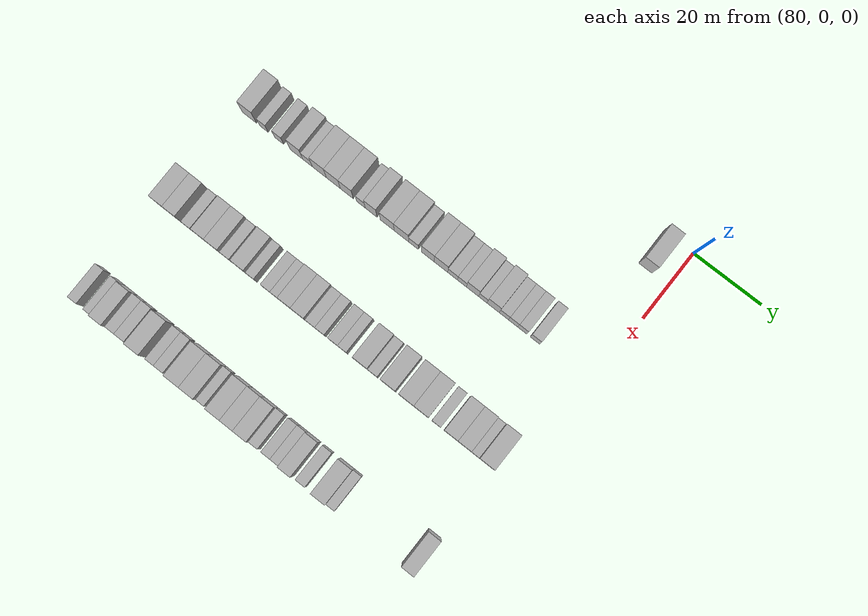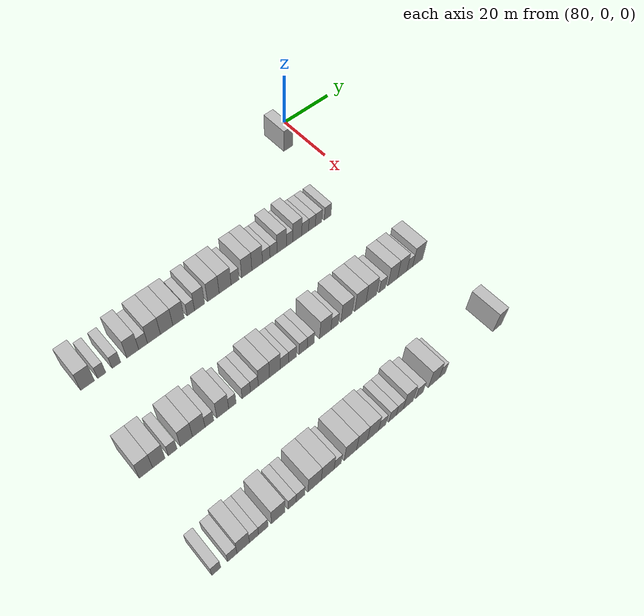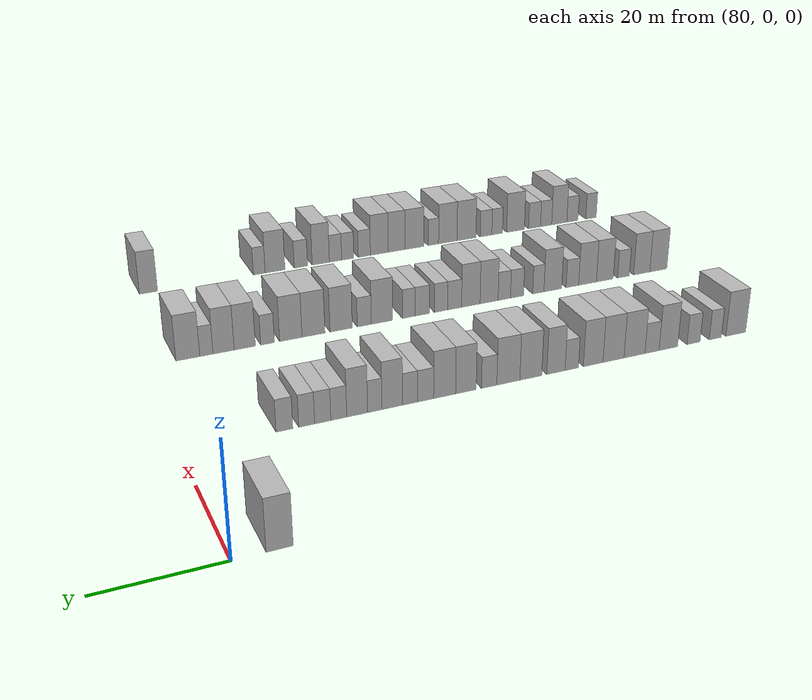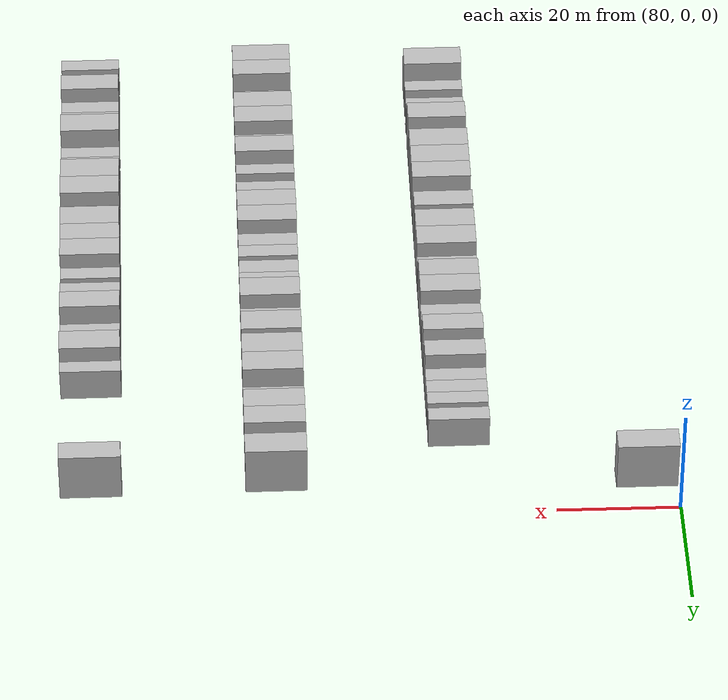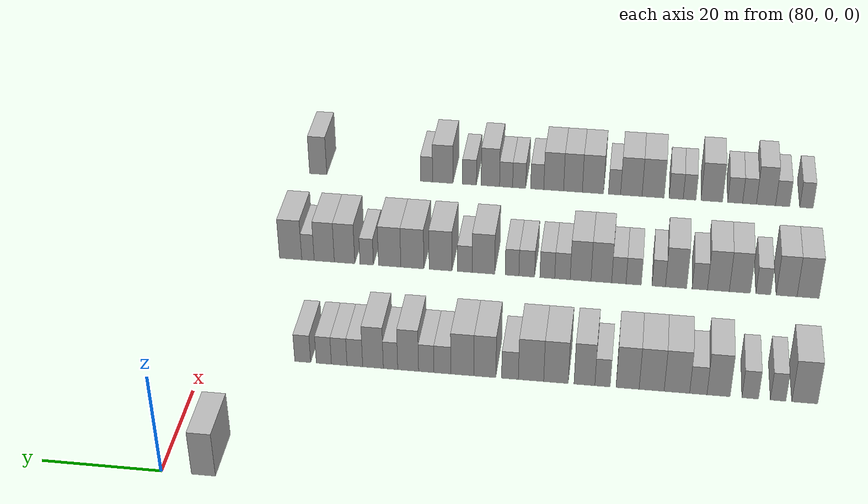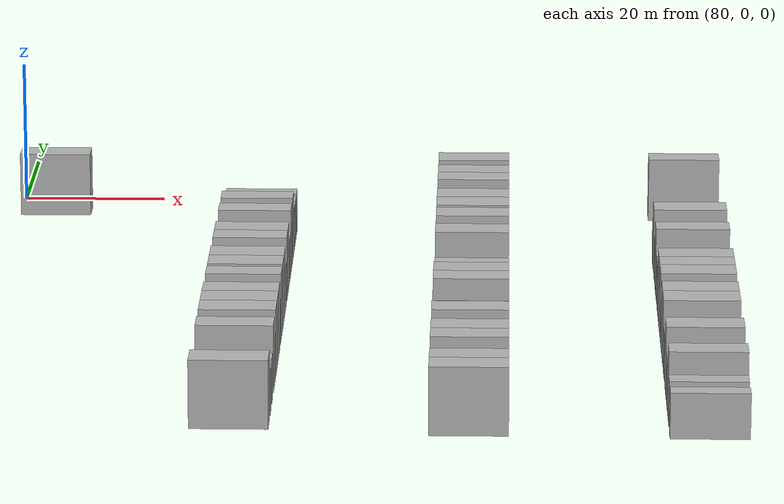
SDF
<sdf version="1.6">
 <world name="default">
  <model name="building_548">
   <static>1</static>
   <pose>85.0000 -6.9594 0 0.000000 0.000000 0.000000</pose>
   <link name="link">
    <pose>0 0 4.50 0 0 0</pose>
    <collision name="collision"><geometry><box><size>10.0000 3.9607 9.0000</size></box></geometry></collision>
    <visual name="visual">
     <cast_shadows>0</cast_shadows>
     <geometry><box><size>10.0000 3.9607 9.0000</size></box></geometry>
     <material>
      <script>
       <uri>model://HANNAS_wall/materials/scripts</uri>
       <uri>model://HANNAS_wall/materials/textures</uri>
       <name>vrc/HANNAS_wall</name>
      </script>
     </material>
    </visual>
   </link>
  </model>
  <model name="building_743">
   <static>1</static>
   <pose>115.0000 -104.1729 0 0.000000 0.000000 0.000000</pose>
   <link name="link">
    <pose>0 0 4.50 0 0 0</pose>
    <collision name="collision"><geometry><box><size>10.0000 4.3531 9.0000</size></box></geometry></collision>
    <visual name="visual">
     <cast_shadows>0</cast_shadows>
     <geometry><box><size>10.0000 4.3531 9.0000</size></box></geometry>
     <material>
      <script>
       <uri>model://HANNAS_wall/materials/scripts</uri>
       <uri>model://HANNAS_wall/materials/textures</uri>
       <name>vrc/HANNAS_wall</name>
      </script>
     </material>
    </visual>
   </link>
  </model>
  <model name="building_744">
   <static>1</static>
   <pose>115.0000 -99.6867 0 0.000000 0.000000 0.000000</pose>
   <link name="link">
    <pose>0 0 3.00 0 0 0</pose>
    <collision name="collision"><geometry><box><size>10.0000 2.6191 6.0000</size></box></geometry></collision>
    <visual name="visual">
     <cast_shadows>0</cast_shadows>
     <geometry><box><size>10.0000 2.6191 6.0000</size></box></geometry>
     <material>
      <script>
       <uri>model://HANNAS_wall/materials/scripts</uri>
       <uri>model://HANNAS_wall/materials/textures</uri>
       <name>vrc/HANNAS_wall</name>
      </script>
     </material>
    </visual>
   </link>
  </model>
  <model name="building_745">
   <static>1</static>
   <pose>115.0000 -94.9735 0 0.000000 0.000000 0.000000</pose>
   <link name="link">
    <pose>0 0 3.00 0 0 0</pose>
    <collision name="collision"><geometry><box><size>10.0000 2.8073 6.0000</size></box></geometry></collision>
    <visual name="visual">
     <cast_shadows>0</cast_shadows>
     <geometry><box><size>10.0000 2.8073 6.0000</size></box></geometry>
     <material>
      <script>
       <uri>model://HANNAS_wall/materials/scripts</uri>
       <uri>model://HANNAS_wall/materials/textures</uri>
       <name>vrc/HANNAS_wall</name>
      </script>
     </material>
    </visual>
   </link>
  </model>
  <model name="building_746">
   <static>1</static>
   <pose>115.0000 -89.6016 0 0.000000 0.000000 0.000000</pose>
   <link name="link">
    <pose>0 0 4.50 0 0 0</pose>
    <collision name="collision"><geometry><box><size>10.0000 3.9365 9.0000</size></box></geometry></collision>
    <visual name="visual">
     <cast_shadows>0</cast_shadows>
     <geometry><box><size>10.0000 3.9365 9.0000</size></box></geometry>
     <material>
      <script>
       <uri>model://HANNAS_wall/materials/scripts</uri>
       <uri>model://HANNAS_wall/materials/textures</uri>
       <name>vrc/HANNAS_wall</name>
      </script>
     </material>
    </visual>
   </link>
  </model>
  <model name="building_747">
   <static>1</static>
   <pose>115.0000 -86.1579 0 0.000000 0.000000 0.000000</pose>
   <link name="link">
    <pose>0 0 3.00 0 0 0</pose>
    <collision name="collision"><geometry><box><size>10.0000 2.9509 6.0000</size></box></geometry></collision>
    <visual name="visual">
     <cast_shadows>0</cast_shadows>
     <geometry><box><size>10.0000 2.9509 6.0000</size></box></geometry>
     <material>
      <script>
       <uri>model://HANNAS_wall/materials/scripts</uri>
       <uri>model://HANNAS_wall/materials/textures</uri>
       <name>vrc/HANNAS_wall</name>
      </script>
     </material>
    </visual>
   </link>
  </model>
  <model name="building_748">
   <static>1</static>
   <pose>115.0000 -82.5025 0 0.000000 0.000000 0.000000</pose>
   <link name="link">
    <pose>0 0 4.50 0 0 0</pose>
    <collision name="collision"><geometry><box><size>10.0000 4.3599 9.0000</size></box></geometry></collision>
    <visual name="visual">
     <cast_shadows>0</cast_shadows>
     <geometry><box><size>10.0000 4.3599 9.0000</size></box></geometry>
     <material>
      <script>
       <uri>model://HANNAS_wall/materials/scripts</uri>
       <uri>model://HANNAS_wall/materials/textures</uri>
       <name>vrc/HANNAS_wall</name>
      </script>
     </material>
    </visual>
   </link>
  </model>
  <model name="building_749">
   <static>1</static>
   <pose>115.0000 -78.1792 0 0.000000 0.000000 0.000000</pose>
   <link name="link">
    <pose>0 0 4.50 0 0 0</pose>
    <collision name="collision"><geometry><box><size>10.0000 4.2868 9.0000</size></box></geometry></collision>
    <visual name="visual">
     <cast_shadows>0</cast_shadows>
     <geometry><box><size>10.0000 4.2868 9.0000</size></box></geometry>
     <material>
      <script>
       <uri>model://HANNAS_wall/materials/scripts</uri>
       <uri>model://HANNAS_wall/materials/textures</uri>
       <name>vrc/HANNAS_wall</name>
      </script>
     </material>
    </visual>
   </link>
  </model>
  <model name="building_750">
   <static>1</static>
   <pose>115.0000 -74.0528 0 0.000000 0.000000 0.000000</pose>
   <link name="link">
    <pose>0 0 4.50 0 0 0</pose>
    <collision name="collision"><geometry><box><size>10.0000 3.9661 9.0000</size></box></geometry></collision>
    <visual name="visual">
     <cast_shadows>0</cast_shadows>
     <geometry><box><size>10.0000 3.9661 9.0000</size></box></geometry>
     <material>
      <script>
       <uri>model://HANNAS_wall/materials/scripts</uri>
       <uri>model://HANNAS_wall/materials/textures</uri>
       <name>vrc/HANNAS_wall</name>
      </script>
     </material>
    </visual>
   </link>
  </model>
  <model name="building_751">
   <static>1</static>
   <pose>115.0000 -69.7425 0 0.000000 0.000000 0.000000</pose>
   <link name="link">
    <pose>0 0 3.00 0 0 0</pose>
    <collision name="collision"><geometry><box><size>10.0000 2.6544 6.0000</size></box></geometry></collision>
    <visual name="visual">
     <cast_shadows>0</cast_shadows>
     <geometry><box><size>10.0000 2.6544 6.0000</size></box></geometry>
     <material>
      <script>
       <uri>model://HANNAS_wall/materials/scripts</uri>
       <uri>model://HANNAS_wall/materials/textures</uri>
       <name>vrc/HANNAS_wall</name>
      </script>
     </material>
    </visual>
   </link>
  </model>
  <model name="building_752">
   <static>1</static>
   <pose>115.0000 -66.6131 0 0.000000 0.000000 0.000000</pose>
   <link name="link">
    <pose>0 0 4.50 0 0 0</pose>
    <collision name="collision"><geometry><box><size>10.0000 3.6045 9.0000</size></box></geometry></collision>
    <visual name="visual">
     <cast_shadows>0</cast_shadows>
     <geometry><box><size>10.0000 3.6045 9.0000</size></box></geometry>
     <material>
      <script>
       <uri>model://HANNAS_wall/materials/scripts</uri>
       <uri>model://HANNAS_wall/materials/textures</uri>
       <name>vrc/HANNAS_wall</name>
      </script>
     </material>
    </visual>
   </link>
  </model>
  <model name="building_753">
   <static>1</static>
   <pose>115.0000 -61.6814 0 0.000000 0.000000 0.000000</pose>
   <link name="link">
    <pose>0 0 4.50 0 0 0</pose>
    <collision name="collision"><geometry><box><size>10.0000 4.2590 9.0000</size></box></geometry></collision>
    <visual name="visual">
     <cast_shadows>0</cast_shadows>
     <geometry><box><size>10.0000 4.2590 9.0000</size></box></geometry>
     <material>
      <script>
       <uri>model://HANNAS_wall/materials/scripts</uri>
       <uri>model://HANNAS_wall/materials/textures</uri>
       <name>vrc/HANNAS_wall</name>
      </script>
     </material>
    </visual>
   </link>
  </model>
  <model name="building_754">
   <static>1</static>
   <pose>115.0000 -57.3458 0 0.000000 0.000000 0.000000</pose>
   <link name="link">
    <pose>0 0 4.50 0 0 0</pose>
    <collision name="collision"><geometry><box><size>10.0000 4.4121 9.0000</size></box></geometry></collision>
    <visual name="visual">
     <cast_shadows>0</cast_shadows>
     <geometry><box><size>10.0000 4.4121 9.0000</size></box></geometry>
     <material>
      <script>
       <uri>model://HANNAS_wall/materials/scripts</uri>
       <uri>model://HANNAS_wall/materials/textures</uri>
       <name>vrc/HANNAS_wall</name>
      </script>
     </material>
    </visual>
   </link>
  </model>
  <model name="building_755">
   <static>1</static>
   <pose>115.0000 -53.6777 0 0.000000 0.000000 0.000000</pose>
   <link name="link">
    <pose>0 0 3.00 0 0 0</pose>
    <collision name="collision"><geometry><box><size>10.0000 2.9241 6.0000</size></box></geometry></collision>
    <visual name="visual">
     <cast_shadows>0</cast_shadows>
     <geometry><box><size>10.0000 2.9241 6.0000</size></box></geometry>
     <material>
      <script>
       <uri>model://HANNAS_wall/materials/scripts</uri>
       <uri>model://HANNAS_wall/materials/textures</uri>
       <name>vrc/HANNAS_wall</name>
      </script>
     </material>
    </visual>
   </link>
  </model>
  <model name="building_756">
   <static>1</static>
   <pose>115.0000 -49.2927 0 0.000000 0.000000 0.000000</pose>
   <link name="link">
    <pose>0 0 4.50 0 0 0</pose>
    <collision name="collision"><geometry><box><size>10.0000 3.8459 9.0000</size></box></geometry></collision>
    <visual name="visual">
     <cast_shadows>0</cast_shadows>
     <geometry><box><size>10.0000 3.8459 9.0000</size></box></geometry>
     <material>
      <script>
       <uri>model://HANNAS_wall/materials/scripts</uri>
       <uri>model://HANNAS_wall/materials/textures</uri>
       <name>vrc/HANNAS_wall</name>
      </script>
     </material>
    </visual>
   </link>
  </model>
  <model name="building_757">
   <static>1</static>
   <pose>115.0000 -45.3350 0 0.000000 0.000000 0.000000</pose>
   <link name="link">
    <pose>0 0 4.50 0 0 0</pose>
    <collision name="collision"><geometry><box><size>10.0000 4.0694 9.0000</size></box></geometry></collision>
    <visual name="visual">
     <cast_shadows>0</cast_shadows>
     <geometry><box><size>10.0000 4.0694 9.0000</size></box></geometry>
     <material>
      <script>
       <uri>model://HANNAS_wall/materials/scripts</uri>
       <uri>model://HANNAS_wall/materials/textures</uri>
       <name>vrc/HANNAS_wall</name>
      </script>
     </material>
    </visual>
   </link>
  </model>
  <model name="building_758">
   <static>1</static>
   <pose>115.0000 -41.8275 0 0.000000 0.000000 0.000000</pose>
   <link name="link">
    <pose>0 0 3.00 0 0 0</pose>
    <collision name="collision"><geometry><box><size>10.0000 2.9456 6.0000</size></box></geometry></collision>
    <visual name="visual">
     <cast_shadows>0</cast_shadows>
     <geometry><box><size>10.0000 2.9456 6.0000</size></box></geometry>
     <material>
      <script>
       <uri>model://HANNAS_wall/materials/scripts</uri>
       <uri>model://HANNAS_wall/materials/textures</uri>
       <name>vrc/HANNAS_wall</name>
      </script>
     </material>
    </visual>
   </link>
  </model>
  <model name="building_759">
   <static>1</static>
   <pose>115.0000 -38.9989 0 0.000000 0.000000 0.000000</pose>
   <link name="link">
    <pose>0 0 3.00 0 0 0</pose>
    <collision name="collision"><geometry><box><size>10.0000 2.7116 6.0000</size></box></geometry></collision>
    <visual name="visual">
     <cast_shadows>0</cast_shadows>
     <geometry><box><size>10.0000 2.7116 6.0000</size></box></geometry>
     <material>
      <script>
       <uri>model://HANNAS_wall/materials/scripts</uri>
       <uri>model://HANNAS_wall/materials/textures</uri>
       <name>vrc/HANNAS_wall</name>
      </script>
     </material>
    </visual>
   </link>
  </model>
  <model name="building_760">
   <static>1</static>
   <pose>115.0000 -35.8002 0 0.000000 0.000000 0.000000</pose>
   <link name="link">
    <pose>0 0 4.50 0 0 0</pose>
    <collision name="collision"><geometry><box><size>10.0000 3.6859 9.0000</size></box></geometry></collision>
    <visual name="visual">
     <cast_shadows>0</cast_shadows>
     <geometry><box><size>10.0000 3.6859 9.0000</size></box></geometry>
     <material>
      <script>
       <uri>model://HANNAS_wall/materials/scripts</uri>
       <uri>model://HANNAS_wall/materials/textures</uri>
       <name>vrc/HANNAS_wall</name>
      </script>
     </material>
    </visual>
   </link>
  </model>
  <model name="building_761">
   <static>1</static>
   <pose>115.0000 -32.6843 0 0.000000 0.000000 0.000000</pose>
   <link name="link">
    <pose>0 0 3.00 0 0 0</pose>
    <collision name="collision"><geometry><box><size>10.0000 2.5460 6.0000</size></box></geometry></collision>
    <visual name="visual">
     <cast_shadows>0</cast_shadows>
     <geometry><box><size>10.0000 2.5460 6.0000</size></box></geometry>
     <material>
      <script>
       <uri>model://HANNAS_wall/materials/scripts</uri>
       <uri>model://HANNAS_wall/materials/textures</uri>
       <name>vrc/HANNAS_wall</name>
      </script>
     </material>
    </visual>
   </link>
  </model>
  <model name="building_762">
   <static>1</static>
   <pose>115.0000 -29.5763 0 0.000000 0.000000 0.000000</pose>
   <link name="link">
    <pose>0 0 4.50 0 0 0</pose>
    <collision name="collision"><geometry><box><size>10.0000 3.6699 9.0000</size></box></geometry></collision>
    <visual name="visual">
     <cast_shadows>0</cast_shadows>
     <geometry><box><size>10.0000 3.6699 9.0000</size></box></geometry>
     <material>
      <script>
       <uri>model://HANNAS_wall/materials/scripts</uri>
       <uri>model://HANNAS_wall/materials/textures</uri>
       <name>vrc/HANNAS_wall</name>
      </script>
     </material>
    </visual>
   </link>
  </model>
  <model name="building_763">
   <static>1</static>
   <pose>115.0000 -26.3494 0 0.000000 0.000000 0.000000</pose>
   <link name="link">
    <pose>0 0 3.00 0 0 0</pose>
    <collision name="collision"><geometry><box><size>10.0000 2.7841 6.0000</size></box></geometry></collision>
    <visual name="visual">
     <cast_shadows>0</cast_shadows>
     <geometry><box><size>10.0000 2.7841 6.0000</size></box></geometry>
     <material>
      <script>
       <uri>model://HANNAS_wall/materials/scripts</uri>
       <uri>model://HANNAS_wall/materials/textures</uri>
       <name>vrc/HANNAS_wall</name>
      </script>
     </material>
    </visual>
   </link>
  </model>
  <model name="building_764">
   <static>1</static>
   <pose>115.0000 -23.5656 0 0.000000 0.000000 0.000000</pose>
   <link name="link">
    <pose>0 0 3.00 0 0 0</pose>
    <collision name="collision"><geometry><box><size>10.0000 2.7834 6.0000</size></box></geometry></collision>
    <visual name="visual">
     <cast_shadows>0</cast_shadows>
     <geometry><box><size>10.0000 2.7834 6.0000</size></box></geometry>
     <material>
      <script>
       <uri>model://HANNAS_wall/materials/scripts</uri>
       <uri>model://HANNAS_wall/materials/textures</uri>
       <name>vrc/HANNAS_wall</name>
      </script>
     </material>
    </visual>
   </link>
  </model>
  <model name="building_765">
   <static>1</static>
   <pose>115.0000 -20.8191 0 0.000000 0.000000 0.000000</pose>
   <link name="link">
    <pose>0 0 3.00 0 0 0</pose>
    <collision name="collision"><geometry><box><size>10.0000 2.7096 6.0000</size></box></geometry></collision>
    <visual name="visual">
     <cast_shadows>0</cast_shadows>
     <geometry><box><size>10.0000 2.7096 6.0000</size></box></geometry>
     <material>
      <script>
       <uri>model://HANNAS_wall/materials/scripts</uri>
       <uri>model://HANNAS_wall/materials/textures</uri>
       <name>vrc/HANNAS_wall</name>
      </script>
     </material>
    </visual>
   </link>
  </model>
  <model name="building_766">
   <static>1</static>
   <pose>115.0000 -17.0431 0 0.000000 0.000000 0.000000</pose>
   <link name="link">
    <pose>0 0 3.00 0 0 0</pose>
    <collision name="collision"><geometry><box><size>10.0000 2.8424 6.0000</size></box></geometry></collision>
    <visual name="visual">
     <cast_shadows>0</cast_shadows>
     <geometry><box><size>10.0000 2.8424 6.0000</size></box></geometry>
     <material>
      <script>
       <uri>model://HANNAS_wall/materials/scripts</uri>
       <uri>model://HANNAS_wall/materials/textures</uri>
       <name>vrc/HANNAS_wall</name>
      </script>
     </material>
    </visual>
   </link>
  </model>
  <model name="building_962">
   <static>1</static>
   <pose>145.0000 -106.2715 0 0.000000 0.000000 0.000000</pose>
   <link name="link">
    <pose>0 0 4.50 0 0 0</pose>
    <collision name="collision"><geometry><box><size>10.0000 4.0461 9.0000</size></box></geometry></collision>
    <visual name="visual">
     <cast_shadows>0</cast_shadows>
     <geometry><box><size>10.0000 4.0461 9.0000</size></box></geometry>
     <material>
      <script>
       <uri>model://HANNAS_wall/materials/scripts</uri>
       <uri>model://HANNAS_wall/materials/textures</uri>
       <name>vrc/HANNAS_wall</name>
      </script>
     </material>
    </visual>
   </link>
  </model>
  <model name="building_963">
   <static>1</static>
   <pose>145.0000 -102.3324 0 0.000000 0.000000 0.000000</pose>
   <link name="link">
    <pose>0 0 4.50 0 0 0</pose>
    <collision name="collision"><geometry><box><size>10.0000 3.8322 9.0000</size></box></geometry></collision>
    <visual name="visual">
     <cast_shadows>0</cast_shadows>
     <geometry><box><size>10.0000 3.8322 9.0000</size></box></geometry>
     <material>
      <script>
       <uri>model://HANNAS_wall/materials/scripts</uri>
       <uri>model://HANNAS_wall/materials/textures</uri>
       <name>vrc/HANNAS_wall</name>
      </script>
     </material>
    </visual>
   </link>
  </model>
  <model name="building_964">
   <static>1</static>
   <pose>145.0000 -98.0470 0 0.000000 0.000000 0.000000</pose>
   <link name="link">
    <pose>0 0 3.00 0 0 0</pose>
    <collision name="collision"><geometry><box><size>10.0000 2.7386 6.0000</size></box></geometry></collision>
    <visual name="visual">
     <cast_shadows>0</cast_shadows>
     <geometry><box><size>10.0000 2.7386 6.0000</size></box></geometry>
     <material>
      <script>
       <uri>model://HANNAS_wall/materials/scripts</uri>
       <uri>model://HANNAS_wall/materials/textures</uri>
       <name>vrc/HANNAS_wall</name>
      </script>
     </material>
    </visual>
   </link>
  </model>
  <model name="building_965">
   <static>1</static>
   <pose>145.0000 -93.7318 0 0.000000 0.000000 0.000000</pose>
   <link name="link">
    <pose>0 0 4.50 0 0 0</pose>
    <collision name="collision"><geometry><box><size>10.0000 3.8918 9.0000</size></box></geometry></collision>
    <visual name="visual">
     <cast_shadows>0</cast_shadows>
     <geometry><box><size>10.0000 3.8918 9.0000</size></box></geometry>
     <material>
      <script>
       <uri>model://HANNAS_wall/materials/scripts</uri>
       <uri>model://HANNAS_wall/materials/textures</uri>
       <name>vrc/HANNAS_wall</name>
      </script>
     </material>
    </visual>
   </link>
  </model>
  <model name="building_966">
   <static>1</static>
   <pose>145.0000 -89.7628 0 0.000000 0.000000 0.000000</pose>
   <link name="link">
    <pose>0 0 4.50 0 0 0</pose>
    <collision name="collision"><geometry><box><size>10.0000 4.0461 9.0000</size></box></geometry></collision>
    <visual name="visual">
     <cast_shadows>0</cast_shadows>
     <geometry><box><size>10.0000 4.0461 9.0000</size></box></geometry>
     <material>
      <script>
       <uri>model://HANNAS_wall/materials/scripts</uri>
       <uri>model://HANNAS_wall/materials/textures</uri>
       <name>vrc/HANNAS_wall</name>
      </script>
     </material>
    </visual>
   </link>
  </model>
  <model name="building_967">
   <static>1</static>
   <pose>145.0000 -86.3174 0 0.000000 0.000000 0.000000</pose>
   <link name="link">
    <pose>0 0 3.00 0 0 0</pose>
    <collision name="collision"><geometry><box><size>10.0000 2.8447 6.0000</size></box></geometry></collision>
    <visual name="visual">
     <cast_shadows>0</cast_shadows>
     <geometry><box><size>10.0000 2.8447 6.0000</size></box></geometry>
     <material>
      <script>
       <uri>model://HANNAS_wall/materials/scripts</uri>
       <uri>model://HANNAS_wall/materials/textures</uri>
       <name>vrc/HANNAS_wall</name>
      </script>
     </material>
    </visual>
   </link>
  </model>
  <model name="building_968">
   <static>1</static>
   <pose>145.0000 -81.9142 0 0.000000 0.000000 0.000000</pose>
   <link name="link">
    <pose>0 0 4.50 0 0 0</pose>
    <collision name="collision"><geometry><box><size>10.0000 3.9617 9.0000</size></box></geometry></collision>
    <visual name="visual">
     <cast_shadows>0</cast_shadows>
     <geometry><box><size>10.0000 3.9617 9.0000</size></box></geometry>
     <material>
      <script>
       <uri>model://HANNAS_wall/materials/scripts</uri>
       <uri>model://HANNAS_wall/materials/textures</uri>
       <name>vrc/HANNAS_wall</name>
      </script>
     </material>
    </visual>
   </link>
  </model>
  <model name="building_969">
   <static>1</static>
   <pose>145.0000 -78.6820 0 0.000000 0.000000 0.000000</pose>
   <link name="link">
    <pose>0 0 3.00 0 0 0</pose>
    <collision name="collision"><geometry><box><size>10.0000 2.5027 6.0000</size></box></geometry></collision>
    <visual name="visual">
     <cast_shadows>0</cast_shadows>
     <geometry><box><size>10.0000 2.5027 6.0000</size></box></geometry>
     <material>
      <script>
       <uri>model://HANNAS_wall/materials/scripts</uri>
       <uri>model://HANNAS_wall/materials/textures</uri>
       <name>vrc/HANNAS_wall</name>
      </script>
     </material>
    </visual>
   </link>
  </model>
  <model name="building_970">
   <static>1</static>
   <pose>145.0000 -73.9994 0 0.000000 0.000000 0.000000</pose>
   <link name="link">
    <pose>0 0 3.00 0 0 0</pose>
    <collision name="collision"><geometry><box><size>10.0000 2.8625 6.0000</size></box></geometry></collision>
    <visual name="visual">
     <cast_shadows>0</cast_shadows>
     <geometry><box><size>10.0000 2.8625 6.0000</size></box></geometry>
     <material>
      <script>
       <uri>model://HANNAS_wall/materials/scripts</uri>
       <uri>model://HANNAS_wall/materials/textures</uri>
       <name>vrc/HANNAS_wall</name>
      </script>
     </material>
    </visual>
   </link>
  </model>
  <model name="building_971">
   <static>1</static>
   <pose>145.0000 -71.2258 0 0.000000 0.000000 0.000000</pose>
   <link name="link">
    <pose>0 0 3.00 0 0 0</pose>
    <collision name="collision"><geometry><box><size>10.0000 2.6847 6.0000</size></box></geometry></collision>
    <visual name="visual">
     <cast_shadows>0</cast_shadows>
     <geometry><box><size>10.0000 2.6847 6.0000</size></box></geometry>
     <material>
      <script>
       <uri>model://HANNAS_wall/materials/scripts</uri>
       <uri>model://HANNAS_wall/materials/textures</uri>
       <name>vrc/HANNAS_wall</name>
      </script>
     </material>
    </visual>
   </link>
  </model>
  <model name="building_972">
   <static>1</static>
   <pose>145.0000 -67.9424 0 0.000000 0.000000 0.000000</pose>
   <link name="link">
    <pose>0 0 4.50 0 0 0</pose>
    <collision name="collision"><geometry><box><size>10.0000 3.8821 9.0000</size></box></geometry></collision>
    <visual name="visual">
     <cast_shadows>0</cast_shadows>
     <geometry><box><size>10.0000 3.8821 9.0000</size></box></geometry>
     <material>
      <script>
       <uri>model://HANNAS_wall/materials/scripts</uri>
       <uri>model://HANNAS_wall/materials/textures</uri>
       <name>vrc/HANNAS_wall</name>
      </script>
     </material>
    </visual>
   </link>
  </model>
  <model name="building_973">
   <static>1</static>
   <pose>145.0000 -64.0420 0 0.000000 0.000000 0.000000</pose>
   <link name="link">
    <pose>0 0 4.50 0 0 0</pose>
    <collision name="collision"><geometry><box><size>10.0000 3.9185 9.0000</size></box></geometry></collision>
    <visual name="visual">
     <cast_shadows>0</cast_shadows>
     <geometry><box><size>10.0000 3.9185 9.0000</size></box></geometry>
     <material>
      <script>
       <uri>model://HANNAS_wall/materials/scripts</uri>
       <uri>model://HANNAS_wall/materials/textures</uri>
       <name>vrc/HANNAS_wall</name>
      </script>
     </material>
    </visual>
   </link>
  </model>
  <model name="building_974">
   <static>1</static>
   <pose>145.0000 -60.6245 0 0.000000 0.000000 0.000000</pose>
   <link name="link">
    <pose>0 0 3.00 0 0 0</pose>
    <collision name="collision"><geometry><box><size>10.0000 2.9165 6.0000</size></box></geometry></collision>
    <visual name="visual">
     <cast_shadows>0</cast_shadows>
     <geometry><box><size>10.0000 2.9165 6.0000</size></box></geometry>
     <material>
      <script>
       <uri>model://HANNAS_wall/materials/scripts</uri>
       <uri>model://HANNAS_wall/materials/textures</uri>
       <name>vrc/HANNAS_wall</name>
      </script>
     </material>
    </visual>
   </link>
  </model>
  <model name="building_975">
   <static>1</static>
   <pose>145.0000 -57.7631 0 0.000000 0.000000 0.000000</pose>
   <link name="link">
    <pose>0 0 3.00 0 0 0</pose>
    <collision name="collision"><geometry><box><size>10.0000 2.8063 6.0000</size></box></geometry></collision>
    <visual name="visual">
     <cast_shadows>0</cast_shadows>
     <geometry><box><size>10.0000 2.8063 6.0000</size></box></geometry>
     <material>
      <script>
       <uri>model://HANNAS_wall/materials/scripts</uri>
       <uri>model://HANNAS_wall/materials/textures</uri>
       <name>vrc/HANNAS_wall</name>
      </script>
     </material>
    </visual>
   </link>
  </model>
  <model name="building_976">
   <static>1</static>
   <pose>145.0000 -53.8699 0 0.000000 0.000000 0.000000</pose>
   <link name="link">
    <pose>0 0 3.00 0 0 0</pose>
    <collision name="collision"><geometry><box><size>10.0000 2.9802 6.0000</size></box></geometry></collision>
    <visual name="visual">
     <cast_shadows>0</cast_shadows>
     <geometry><box><size>10.0000 2.9802 6.0000</size></box></geometry>
     <material>
      <script>
       <uri>model://HANNAS_wall/materials/scripts</uri>
       <uri>model://HANNAS_wall/materials/textures</uri>
       <name>vrc/HANNAS_wall</name>
      </script>
     </material>
    </visual>
   </link>
  </model>
  <model name="building_977">
   <static>1</static>
   <pose>145.0000 -51.0795 0 0.000000 0.000000 0.000000</pose>
   <link name="link">
    <pose>0 0 3.00 0 0 0</pose>
    <collision name="collision"><geometry><box><size>10.0000 2.6007 6.0000</size></box></geometry></collision>
    <visual name="visual">
     <cast_shadows>0</cast_shadows>
     <geometry><box><size>10.0000 2.6007 6.0000</size></box></geometry>
     <material>
      <script>
       <uri>model://HANNAS_wall/materials/scripts</uri>
       <uri>model://HANNAS_wall/materials/textures</uri>
       <name>vrc/HANNAS_wall</name>
      </script>
     </material>
    </visual>
   </link>
  </model>
  <model name="building_978">
   <static>1</static>
   <pose>145.0000 -45.6263 0 0.000000 0.000000 0.000000</pose>
   <link name="link">
    <pose>0 0 4.50 0 0 0</pose>
    <collision name="collision"><geometry><box><size>10.0000 4.3057 9.0000</size></box></geometry></collision>
    <visual name="visual">
     <cast_shadows>0</cast_shadows>
     <geometry><box><size>10.0000 4.3057 9.0000</size></box></geometry>
     <material>
      <script>
       <uri>model://HANNAS_wall/materials/scripts</uri>
       <uri>model://HANNAS_wall/materials/textures</uri>
       <name>vrc/HANNAS_wall</name>
      </script>
     </material>
    </visual>
   </link>
  </model>
  <model name="building_979">
   <static>1</static>
   <pose>145.0000 -42.0626 0 0.000000 0.000000 0.000000</pose>
   <link name="link">
    <pose>0 0 3.00 0 0 0</pose>
    <collision name="collision"><geometry><box><size>10.0000 2.8216 6.0000</size></box></geometry></collision>
    <visual name="visual">
     <cast_shadows>0</cast_shadows>
     <geometry><box><size>10.0000 2.8216 6.0000</size></box></geometry>
     <material>
      <script>
       <uri>model://HANNAS_wall/materials/scripts</uri>
       <uri>model://HANNAS_wall/materials/textures</uri>
       <name>vrc/HANNAS_wall</name>
      </script>
     </material>
    </visual>
   </link>
  </model>
  <model name="building_980">
   <static>1</static>
   <pose>145.0000 -37.4567 0 0.000000 0.000000 0.000000</pose>
   <link name="link">
    <pose>0 0 4.50 0 0 0</pose>
    <collision name="collision"><geometry><box><size>10.0000 4.3904 9.0000</size></box></geometry></collision>
    <visual name="visual">
     <cast_shadows>0</cast_shadows>
     <geometry><box><size>10.0000 4.3904 9.0000</size></box></geometry>
     <material>
      <script>
       <uri>model://HANNAS_wall/materials/scripts</uri>
       <uri>model://HANNAS_wall/materials/textures</uri>
       <name>vrc/HANNAS_wall</name>
      </script>
     </material>
    </visual>
   </link>
  </model>
  <model name="building_981">
   <static>1</static>
   <pose>145.0000 -32.0406 0 0.000000 0.000000 0.000000</pose>
   <link name="link">
    <pose>0 0 4.50 0 0 0</pose>
    <collision name="collision"><geometry><box><size>10.0000 4.4417 9.0000</size></box></geometry></collision>
    <visual name="visual">
     <cast_shadows>0</cast_shadows>
     <geometry><box><size>10.0000 4.4417 9.0000</size></box></geometry>
     <material>
      <script>
       <uri>model://HANNAS_wall/materials/scripts</uri>
       <uri>model://HANNAS_wall/materials/textures</uri>
       <name>vrc/HANNAS_wall</name>
      </script>
     </material>
    </visual>
   </link>
  </model>
  <model name="building_982">
   <static>1</static>
   <pose>145.0000 -27.6714 0 0.000000 0.000000 0.000000</pose>
   <link name="link">
    <pose>0 0 4.50 0 0 0</pose>
    <collision name="collision"><geometry><box><size>10.0000 4.2967 9.0000</size></box></geometry></collision>
    <visual name="visual">
     <cast_shadows>0</cast_shadows>
     <geometry><box><size>10.0000 4.2967 9.0000</size></box></geometry>
     <material>
      <script>
       <uri>model://HANNAS_wall/materials/scripts</uri>
       <uri>model://HANNAS_wall/materials/textures</uri>
       <name>vrc/HANNAS_wall</name>
      </script>
     </material>
    </visual>
   </link>
  </model>
  <model name="building_983">
   <static>1</static>
   <pose>145.0000 -23.2257 0 0.000000 0.000000 0.000000</pose>
   <link name="link">
    <pose>0 0 3.00 0 0 0</pose>
    <collision name="collision"><geometry><box><size>10.0000 2.5948 6.0000</size></box></geometry></collision>
    <visual name="visual">
     <cast_shadows>0</cast_shadows>
     <geometry><box><size>10.0000 2.5948 6.0000</size></box></geometry>
     <material>
      <script>
       <uri>model://HANNAS_wall/materials/scripts</uri>
       <uri>model://HANNAS_wall/materials/textures</uri>
       <name>vrc/HANNAS_wall</name>
      </script>
     </material>
    </visual>
   </link>
  </model>
  <model name="building_984">
   <static>1</static>
   <pose>145.0000 -18.9455 0 0.000000 0.000000 0.000000</pose>
   <link name="link">
    <pose>0 0 4.50 0 0 0</pose>
    <collision name="collision"><geometry><box><size>10.0000 3.9655 9.0000</size></box></geometry></collision>
    <visual name="visual">
     <cast_shadows>0</cast_shadows>
     <geometry><box><size>10.0000 3.9655 9.0000</size></box></geometry>
     <material>
      <script>
       <uri>model://HANNAS_wall/materials/scripts</uri>
       <uri>model://HANNAS_wall/materials/textures</uri>
       <name>vrc/HANNAS_wall</name>
      </script>
     </material>
    </visual>
   </link>
  </model>
  <model name="building_985">
   <static>1</static>
   <pose>145.0000 -15.0002 0 0.000000 0.000000 0.000000</pose>
   <link name="link">
    <pose>0 0 4.50 0 0 0</pose>
    <collision name="collision"><geometry><box><size>10.0000 3.9250 9.0000</size></box></geometry></collision>
    <visual name="visual">
     <cast_shadows>0</cast_shadows>
     <geometry><box><size>10.0000 3.9250 9.0000</size></box></geometry>
     <material>
      <script>
       <uri>model://HANNAS_wall/materials/scripts</uri>
       <uri>model://HANNAS_wall/materials/textures</uri>
       <name>vrc/HANNAS_wall</name>
      </script>
     </material>
    </visual>
   </link>
  </model>
  <model name="building_986">
   <static>1</static>
   <pose>145.0000 -11.8286 0 0.000000 0.000000 0.000000</pose>
   <link name="link">
    <pose>0 0 3.00 0 0 0</pose>
    <collision name="collision"><geometry><box><size>10.0000 2.4182 6.0000</size></box></geometry></collision>
    <visual name="visual">
     <cast_shadows>0</cast_shadows>
     <geometry><box><size>10.0000 2.4182 6.0000</size></box></geometry>
     <material>
      <script>
       <uri>model://HANNAS_wall/materials/scripts</uri>
       <uri>model://HANNAS_wall/materials/textures</uri>
       <name>vrc/HANNAS_wall</name>
      </script>
     </material>
    </visual>
   </link>
  </model>
  <model name="building_987">
   <static>1</static>
   <pose>145.0000 -8.4532 0 0.000000 0.000000 0.000000</pose>
   <link name="link">
    <pose>0 0 4.50 0 0 0</pose>
    <collision name="collision"><geometry><box><size>10.0000 4.3327 9.0000</size></box></geometry></collision>
    <visual name="visual">
     <cast_shadows>0</cast_shadows>
     <geometry><box><size>10.0000 4.3327 9.0000</size></box></geometry>
     <material>
      <script>
       <uri>model://HANNAS_wall/materials/scripts</uri>
       <uri>model://HANNAS_wall/materials/textures</uri>
       <name>vrc/HANNAS_wall</name>
      </script>
     </material>
    </visual>
   </link>
  </model>
  <model name="building_1192">
   <static>1</static>
   <pose>175.0000 -107.4912 0 0.000000 0.000000 0.000000</pose>
   <link name="link">
    <pose>0 0 3.00 0 0 0</pose>
    <collision name="collision"><geometry><box><size>10.0000 2.6476 6.0000</size></box></geometry></collision>
    <visual name="visual">
     <cast_shadows>0</cast_shadows>
     <geometry><box><size>10.0000 2.6476 6.0000</size></box></geometry>
     <material>
      <script>
       <uri>model://HANNAS_wall/materials/scripts</uri>
       <uri>model://HANNAS_wall/materials/textures</uri>
       <name>vrc/HANNAS_wall</name>
      </script>
     </material>
    </visual>
   </link>
  </model>
  <model name="building_1193">
   <static>1</static>
   <pose>175.0000 -102.7568 0 0.000000 0.000000 0.000000</pose>
   <link name="link">
    <pose>0 0 3.00 0 0 0</pose>
    <collision name="collision"><geometry><box><size>10.0000 2.8211 6.0000</size></box></geometry></collision>
    <visual name="visual">
     <cast_shadows>0</cast_shadows>
     <geometry><box><size>10.0000 2.8211 6.0000</size></box></geometry>
     <material>
      <script>
       <uri>model://HANNAS_wall/materials/scripts</uri>
       <uri>model://HANNAS_wall/materials/textures</uri>
       <name>vrc/HANNAS_wall</name>
      </script>
     </material>
    </visual>
   </link>
  </model>
  <model name="building_1194">
   <static>1</static>
   <pose>175.0000 -99.4472 0 0.000000 0.000000 0.000000</pose>
   <link name="link">
    <pose>0 0 4.50 0 0 0</pose>
    <collision name="collision"><geometry><box><size>10.0000 3.7981 9.0000</size></box></geometry></collision>
    <visual name="visual">
     <cast_shadows>0</cast_shadows>
     <geometry><box><size>10.0000 3.7981 9.0000</size></box></geometry>
     <material>
      <script>
       <uri>model://HANNAS_wall/materials/scripts</uri>
       <uri>model://HANNAS_wall/materials/textures</uri>
       <name>vrc/HANNAS_wall</name>
      </script>
     </material>
    </visual>
   </link>
  </model>
  <model name="building_1195">
   <static>1</static>
   <pose>175.0000 -96.1649 0 0.000000 0.000000 0.000000</pose>
   <link name="link">
    <pose>0 0 3.00 0 0 0</pose>
    <collision name="collision"><geometry><box><size>10.0000 2.7665 6.0000</size></box></geometry></collision>
    <visual name="visual">
     <cast_shadows>0</cast_shadows>
     <geometry><box><size>10.0000 2.7665 6.0000</size></box></geometry>
     <material>
      <script>
       <uri>model://HANNAS_wall/materials/scripts</uri>
       <uri>model://HANNAS_wall/materials/textures</uri>
       <name>vrc/HANNAS_wall</name>
      </script>
     </material>
    </visual>
   </link>
  </model>
  <model name="building_1196">
   <static>1</static>
   <pose>175.0000 -93.2903 0 0.000000 0.000000 0.000000</pose>
   <link name="link">
    <pose>0 0 3.00 0 0 0</pose>
    <collision name="collision"><geometry><box><size>10.0000 2.9829 6.0000</size></box></geometry></collision>
    <visual name="visual">
     <cast_shadows>0</cast_shadows>
     <geometry><box><size>10.0000 2.9829 6.0000</size></box></geometry>
     <material>
      <script>
       <uri>model://HANNAS_wall/materials/scripts</uri>
       <uri>model://HANNAS_wall/materials/textures</uri>
       <name>vrc/HANNAS_wall</name>
      </script>
     </material>
    </visual>
   </link>
  </model>
  <model name="building_1197">
   <static>1</static>
   <pose>175.0000 -88.6312 0 0.000000 0.000000 0.000000</pose>
   <link name="link">
    <pose>0 0 4.50 0 0 0</pose>
    <collision name="collision"><geometry><box><size>10.0000 4.3352 9.0000</size></box></geometry></collision>
    <visual name="visual">
     <cast_shadows>0</cast_shadows>
     <geometry><box><size>10.0000 4.3352 9.0000</size></box></geometry>
     <material>
      <script>
       <uri>model://HANNAS_wall/materials/scripts</uri>
       <uri>model://HANNAS_wall/materials/textures</uri>
       <name>vrc/HANNAS_wall</name>
      </script>
     </material>
    </visual>
   </link>
  </model>
  <model name="building_1198">
   <static>1</static>
   <pose>175.0000 -84.1810 0 0.000000 0.000000 0.000000</pose>
   <link name="link">
    <pose>0 0 3.00 0 0 0</pose>
    <collision name="collision"><geometry><box><size>10.0000 2.5652 6.0000</size></box></geometry></collision>
    <visual name="visual">
     <cast_shadows>0</cast_shadows>
     <geometry><box><size>10.0000 2.5652 6.0000</size></box></geometry>
     <material>
      <script>
       <uri>model://HANNAS_wall/materials/scripts</uri>
       <uri>model://HANNAS_wall/materials/textures</uri>
       <name>vrc/HANNAS_wall</name>
      </script>
     </material>
    </visual>
   </link>
  </model>
  <model name="building_1199">
   <static>1</static>
   <pose>175.0000 -81.4859 0 0.000000 0.000000 0.000000</pose>
   <link name="link">
    <pose>0 0 3.00 0 0 0</pose>
    <collision name="collision"><geometry><box><size>10.0000 2.8251 6.0000</size></box></geometry></collision>
    <visual name="visual">
     <cast_shadows>0</cast_shadows>
     <geometry><box><size>10.0000 2.8251 6.0000</size></box></geometry>
     <material>
      <script>
       <uri>model://HANNAS_wall/materials/scripts</uri>
       <uri>model://HANNAS_wall/materials/textures</uri>
       <name>vrc/HANNAS_wall</name>
      </script>
     </material>
    </visual>
   </link>
  </model>
  <model name="building_1200">
   <static>1</static>
   <pose>175.0000 -76.8336 0 0.000000 0.000000 0.000000</pose>
   <link name="link">
    <pose>0 0 4.50 0 0 0</pose>
    <collision name="collision"><geometry><box><size>10.0000 4.4795 9.0000</size></box></geometry></collision>
    <visual name="visual">
     <cast_shadows>0</cast_shadows>
     <geometry><box><size>10.0000 4.4795 9.0000</size></box></geometry>
     <material>
      <script>
       <uri>model://HANNAS_wall/materials/scripts</uri>
       <uri>model://HANNAS_wall/materials/textures</uri>
       <name>vrc/HANNAS_wall</name>
      </script>
     </material>
    </visual>
   </link>
  </model>
  <model name="building_1201">
   <static>1</static>
   <pose>175.0000 -72.4285 0 0.000000 0.000000 0.000000</pose>
   <link name="link">
    <pose>0 0 4.50 0 0 0</pose>
    <collision name="collision"><geometry><box><size>10.0000 4.3306 9.0000</size></box></geometry></collision>
    <visual name="visual">
     <cast_shadows>0</cast_shadows>
     <geometry><box><size>10.0000 4.3306 9.0000</size></box></geometry>
     <material>
      <script>
       <uri>model://HANNAS_wall/materials/scripts</uri>
       <uri>model://HANNAS_wall/materials/textures</uri>
       <name>vrc/HANNAS_wall</name>
      </script>
     </material>
    </visual>
   </link>
  </model>
  <model name="building_1202">
   <static>1</static>
   <pose>175.0000 -69.0344 0 0.000000 0.000000 0.000000</pose>
   <link name="link">
    <pose>0 0 3.00 0 0 0</pose>
    <collision name="collision"><geometry><box><size>10.0000 2.4577 6.0000</size></box></geometry></collision>
    <visual name="visual">
     <cast_shadows>0</cast_shadows>
     <geometry><box><size>10.0000 2.4577 6.0000</size></box></geometry>
     <material>
      <script>
       <uri>model://HANNAS_wall/materials/scripts</uri>
       <uri>model://HANNAS_wall/materials/textures</uri>
       <name>vrc/HANNAS_wall</name>
      </script>
     </material>
    </visual>
   </link>
  </model>
  <model name="building_1203">
   <static>1</static>
   <pose>175.0000 -64.6509 0 0.000000 0.000000 0.000000</pose>
   <link name="link">
    <pose>0 0 4.50 0 0 0</pose>
    <collision name="collision"><geometry><box><size>10.0000 4.3092 9.0000</size></box></geometry></collision>
    <visual name="visual">
     <cast_shadows>0</cast_shadows>
     <geometry><box><size>10.0000 4.3092 9.0000</size></box></geometry>
     <material>
      <script>
       <uri>model://HANNAS_wall/materials/scripts</uri>
       <uri>model://HANNAS_wall/materials/textures</uri>
       <name>vrc/HANNAS_wall</name>
      </script>
     </material>
    </visual>
   </link>
  </model>
  <model name="building_1204">
   <static>1</static>
   <pose>175.0000 -60.5859 0 0.000000 0.000000 0.000000</pose>
   <link name="link">
    <pose>0 0 4.50 0 0 0</pose>
    <collision name="collision"><geometry><box><size>10.0000 3.8207 9.0000</size></box></geometry></collision>
    <visual name="visual">
     <cast_shadows>0</cast_shadows>
     <geometry><box><size>10.0000 3.8207 9.0000</size></box></geometry>
     <material>
      <script>
       <uri>model://HANNAS_wall/materials/scripts</uri>
       <uri>model://HANNAS_wall/materials/textures</uri>
       <name>vrc/HANNAS_wall</name>
      </script>
     </material>
    </visual>
   </link>
  </model>
  <model name="building_1205">
   <static>1</static>
   <pose>175.0000 -56.6550 0 0.000000 0.000000 0.000000</pose>
   <link name="link">
    <pose>0 0 4.50 0 0 0</pose>
    <collision name="collision"><geometry><box><size>10.0000 4.0412 9.0000</size></box></geometry></collision>
    <visual name="visual">
     <cast_shadows>0</cast_shadows>
     <geometry><box><size>10.0000 4.0412 9.0000</size></box></geometry>
     <material>
      <script>
       <uri>model://HANNAS_wall/materials/scripts</uri>
       <uri>model://HANNAS_wall/materials/textures</uri>
       <name>vrc/HANNAS_wall</name>
      </script>
     </material>
    </visual>
   </link>
  </model>
  <model name="building_1206">
   <static>1</static>
   <pose>175.0000 -53.2851 0 0.000000 0.000000 0.000000</pose>
   <link name="link">
    <pose>0 0 3.00 0 0 0</pose>
    <collision name="collision"><geometry><box><size>10.0000 2.6986 6.0000</size></box></geometry></collision>
    <visual name="visual">
     <cast_shadows>0</cast_shadows>
     <geometry><box><size>10.0000 2.6986 6.0000</size></box></geometry>
     <material>
      <script>
       <uri>model://HANNAS_wall/materials/scripts</uri>
       <uri>model://HANNAS_wall/materials/textures</uri>
       <name>vrc/HANNAS_wall</name>
      </script>
     </material>
    </visual>
   </link>
  </model>
  <model name="building_1207">
   <static>1</static>
   <pose>175.0000 -49.5921 0 0.000000 0.000000 0.000000</pose>
   <link name="link">
    <pose>0 0 3.00 0 0 0</pose>
    <collision name="collision"><geometry><box><size>10.0000 2.6874 6.0000</size></box></geometry></collision>
    <visual name="visual">
     <cast_shadows>0</cast_shadows>
     <geometry><box><size>10.0000 2.6874 6.0000</size></box></geometry>
     <material>
      <script>
       <uri>model://HANNAS_wall/materials/scripts</uri>
       <uri>model://HANNAS_wall/materials/textures</uri>
       <name>vrc/HANNAS_wall</name>
      </script>
     </material>
    </visual>
   </link>
  </model>
  <model name="building_1208">
   <static>1</static>
   <pose>175.0000 -46.9039 0 0.000000 0.000000 0.000000</pose>
   <link name="link">
    <pose>0 0 3.00 0 0 0</pose>
    <collision name="collision"><geometry><box><size>10.0000 2.6892 6.0000</size></box></geometry></collision>
    <visual name="visual">
     <cast_shadows>0</cast_shadows>
     <geometry><box><size>10.0000 2.6892 6.0000</size></box></geometry>
     <material>
      <script>
       <uri>model://HANNAS_wall/materials/scripts</uri>
       <uri>model://HANNAS_wall/materials/textures</uri>
       <name>vrc/HANNAS_wall</name>
      </script>
     </material>
    </visual>
   </link>
  </model>
  <model name="building_1209">
   <static>1</static>
   <pose>175.0000 -43.6740 0 0.000000 0.000000 0.000000</pose>
   <link name="link">
    <pose>0 0 4.50 0 0 0</pose>
    <collision name="collision"><geometry><box><size>10.0000 3.7705 9.0000</size></box></geometry></collision>
    <visual name="visual">
     <cast_shadows>0</cast_shadows>
     <geometry><box><size>10.0000 3.7705 9.0000</size></box></geometry>
     <material>
      <script>
       <uri>model://HANNAS_wall/materials/scripts</uri>
       <uri>model://HANNAS_wall/materials/textures</uri>
       <name>vrc/HANNAS_wall</name>
      </script>
     </material>
    </visual>
   </link>
  </model>
  <model name="building_1210">
   <static>1</static>
   <pose>175.0000 -39.3655 0 0.000000 0.000000 0.000000</pose>
   <link name="link">
    <pose>0 0 3.00 0 0 0</pose>
    <collision name="collision"><geometry><box><size>10.0000 2.8465 6.0000</size></box></geometry></collision>
    <visual name="visual">
     <cast_shadows>0</cast_shadows>
     <geometry><box><size>10.0000 2.8465 6.0000</size></box></geometry>
     <material>
      <script>
       <uri>model://HANNAS_wall/materials/scripts</uri>
       <uri>model://HANNAS_wall/materials/textures</uri>
       <name>vrc/HANNAS_wall</name>
      </script>
     </material>
    </visual>
   </link>
  </model>
  <model name="building_1211">
   <static>1</static>
   <pose>175.0000 -33.8359 0 0.000000 0.000000 0.000000</pose>
   <link name="link">
    <pose>0 0 4.50 0 0 0</pose>
    <collision name="collision"><geometry><box><size>10.0000 4.2127 9.0000</size></box></geometry></collision>
    <visual name="visual">
     <cast_shadows>0</cast_shadows>
     <geometry><box><size>10.0000 4.2127 9.0000</size></box></geometry>
     <material>
      <script>
       <uri>model://HANNAS_wall/materials/scripts</uri>
       <uri>model://HANNAS_wall/materials/textures</uri>
       <name>vrc/HANNAS_wall</name>
      </script>
     </material>
    </visual>
   </link>
  </model>
  <model name="building_1212">
   <static>1</static>
   <pose>175.0000 -30.4851 0 0.000000 0.000000 0.000000</pose>
   <link name="link">
    <pose>0 0 3.00 0 0 0</pose>
    <collision name="collision"><geometry><box><size>10.0000 2.4887 6.0000</size></box></geometry></collision>
    <visual name="visual">
     <cast_shadows>0</cast_shadows>
     <geometry><box><size>10.0000 2.4887 6.0000</size></box></geometry>
     <material>
      <script>
       <uri>model://HANNAS_wall/materials/scripts</uri>
       <uri>model://HANNAS_wall/materials/textures</uri>
       <name>vrc/HANNAS_wall</name>
      </script>
     </material>
    </visual>
   </link>
  </model>
  <model name="building_1213">
   <static>1</static>
   <pose>175.0000 -7.8308 0 0.000000 0.000000 0.000000</pose>
   <link name="link">
    <pose>0 0 4.50 0 0 0</pose>
    <collision name="collision"><geometry><box><size>10.0000 3.6066 9.0000</size></box></geometry></collision>
    <visual name="visual">
     <cast_shadows>0</cast_shadows>
     <geometry><box><size>10.0000 3.6066 9.0000</size></box></geometry>
     <material>
      <script>
       <uri>model://HANNAS_wall/materials/scripts</uri>
       <uri>model://HANNAS_wall/materials/textures</uri>
       <name>vrc/HANNAS_wall</name>
      </script>
     </material>
    </visual>
   </link>
  </model>
 </world>
</sdf>
